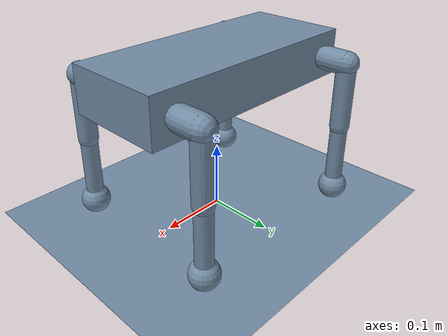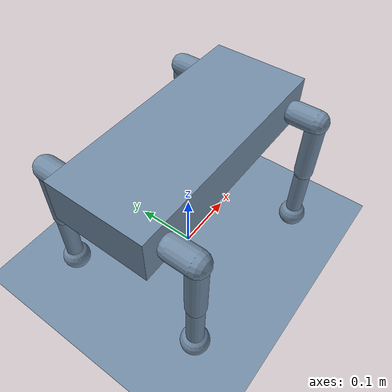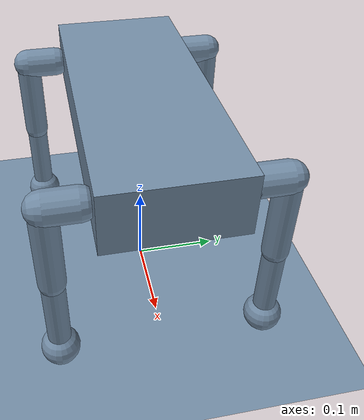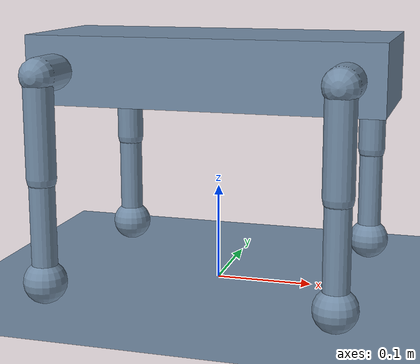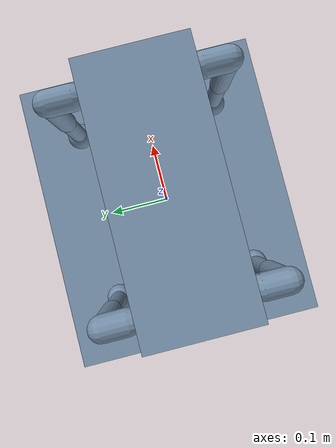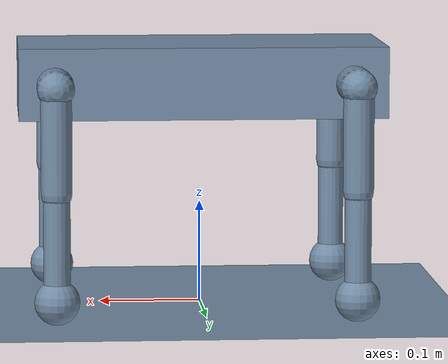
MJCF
<mujoco model="robot_dog_minimal">
  <compiler angle="radian" autolimits="true" inertiafromgeom="true"/>
  <option timestep="0.002" gravity="0 0 -9.81" integrator="implicitfast"
          solver="Newton" iterations="20" tolerance="1e-10" cone="elliptic"/>

  <default>
    <joint damping="0.8" armature="0.01"/>
    <geom condim="3" friction="0.9 0.02 0.001" solref="0.012 1"
          solimp="0.9 0.95 0.001" density="500" rgba="0.45 0.55 0.65 1"/>
    <position kp="55" kv="4" ctrllimited="true" forcelimited="true"
              forcerange="-35 35"/>
  </default>

  <asset>
    <material name="ground" rgba="0.24 0.27 0.30 1"/>
    <material name="body" rgba="0.18 0.40 0.68 1"/>
    <material name="right_leg" rgba="0.78 0.45 0.16 1"/>
    <material name="left_leg" rgba="0.20 0.62 0.42 1"/>
    <material name="foot" rgba="0.12 0.12 0.12 1"/>
  </asset>

  <worldbody>
    <light pos="0 0 2" dir="0 0 -1" diffuse="0.8 0.8 0.8"/>
    <geom name="ground" type="plane" size="2 2 0.1" material="ground"
          density="0" friction="0.9 0.02 0.001"/>

    <body name="base" pos="0 0 0.225">
      <freejoint name="base_free"/>
      <geom name="base_geom" type="box" size="0.18 0.075 0.035"
            mass="6.0" material="body"/>
      <site name="imu" pos="0 0 0" size="0.008" rgba="1 0 0 1"/>

      <body name="front_right_hip" pos="0.145 -0.085 0">
        <joint name="Revolute_1" type="hinge" axis="1 0 0" range="-0.6 0.6"/>
        <geom name="front_right_hip_geom" type="capsule"
              fromto="0 0 0 0 -0.035 0" size="0.018" mass="0.20"
              material="right_leg"/>
        <body name="front_right_thigh" pos="0 -0.035 0">
          <joint name="Revolute_25" type="hinge" axis="0 1 0"
                 range="-1.2 1.2"/>
          <geom name="front_right_thigh_geom" type="capsule"
                fromto="0 0 0 0 0 -0.10" size="0.015" mass="0.25"
                material="right_leg"/>
          <body name="front_right_calf" pos="0 0 -0.10">
            <joint name="Revolute_40" type="hinge" axis="0 1 0"
                   range="-2.0 0.3"/>
            <geom name="front_right_calf_geom" type="capsule"
                  fromto="0 0 0 0 0 -0.105" size="0.013" mass="0.20"
                  material="right_leg"/>
            <body name="front_right_foot" pos="0 0 -0.105">
              <geom name="front_right_foot_geom" type="sphere" size="0.022"
                    mass="0.08" material="foot"/>
              <site name="front_right_foot_site" size="0.024" rgba="0 0 0 0"/>
            </body>
          </body>
        </body>
      </body>

      <body name="rear_right_hip" pos="-0.145 -0.085 0">
        <joint name="Revolute_3" type="hinge" axis="1 0 0" range="-0.6 0.6"/>
        <geom name="rear_right_hip_geom" type="capsule"
              fromto="0 0 0 0 -0.035 0" size="0.018" mass="0.20"
              material="right_leg"/>
        <body name="rear_right_thigh" pos="0 -0.035 0">
          <joint name="Revolute_20" type="hinge" axis="0 1 0"
                 range="-1.2 1.2"/>
          <geom name="rear_right_thigh_geom" type="capsule"
                fromto="0 0 0 0 0 -0.10" size="0.015" mass="0.25"
                material="right_leg"/>
          <body name="rear_right_calf" pos="0 0 -0.10">
            <joint name="Revolute_23" type="hinge" axis="0 1 0"
                   range="-2.0 0.3"/>
            <geom name="rear_right_calf_geom" type="capsule"
                  fromto="0 0 0 0 0 -0.105" size="0.013" mass="0.20"
                  material="right_leg"/>
            <body name="rear_right_foot" pos="0 0 -0.105">
              <geom name="rear_right_foot_geom" type="sphere" size="0.022"
                    mass="0.08" material="foot"/>
              <site name="rear_right_foot_site" size="0.024" rgba="0 0 0 0"/>
            </body>
          </body>
        </body>
      </body>

      <body name="rear_left_hip" pos="-0.145 0.085 0">
        <joint name="Revolute_4" type="hinge" axis="1 0 0" range="-0.6 0.6"/>
        <geom name="rear_left_hip_geom" type="capsule"
              fromto="0 0 0 0 0.035 0" size="0.018" mass="0.20"
              material="left_leg"/>
        <body name="rear_left_thigh" pos="0 0.035 0">
          <joint name="Revolute_35" type="hinge" axis="0 1 0"
                 range="-1.2 1.2"/>
          <geom name="rear_left_thigh_geom" type="capsule"
                fromto="0 0 0 0 0 -0.10" size="0.015" mass="0.25"
                material="left_leg"/>
          <body name="rear_left_calf" pos="0 0 -0.10">
            <joint name="Revolute_45" type="hinge" axis="0 1 0"
                   range="-2.0 0.3"/>
            <geom name="rear_left_calf_geom" type="capsule"
                  fromto="0 0 0 0 0 -0.105" size="0.013" mass="0.20"
                  material="left_leg"/>
            <body name="rear_left_foot" pos="0 0 -0.105">
              <geom name="rear_left_foot_geom" type="sphere" size="0.022"
                    mass="0.08" material="foot"/>
              <site name="rear_left_foot_site" size="0.024" rgba="0 0 0 0"/>
            </body>
          </body>
        </body>
      </body>

      <body name="front_left_hip" pos="0.145 0.085 0">
        <joint name="Revolute_5" type="hinge" axis="1 0 0" range="-0.6 0.6"/>
        <geom name="front_left_hip_geom" type="capsule"
              fromto="0 0 0 0 0.035 0" size="0.018" mass="0.20"
              material="left_leg"/>
        <body name="front_left_thigh" pos="0 0.035 0">
          <joint name="Revolute_31" type="hinge" axis="0 1 0"
                 range="-1.2 1.2"/>
          <geom name="front_left_thigh_geom" type="capsule"
                fromto="0 0 0 0 0 -0.10" size="0.015" mass="0.25"
                material="left_leg"/>
          <body name="front_left_calf" pos="0 0 -0.10">
            <joint name="Revolute_48" type="hinge" axis="0 1 0"
                   range="-2.0 0.3"/>
            <geom name="front_left_calf_geom" type="capsule"
                  fromto="0 0 0 0 0 -0.105" size="0.013" mass="0.20"
                  material="left_leg"/>
            <body name="front_left_foot" pos="0 0 -0.105">
              <geom name="front_left_foot_geom" type="sphere" size="0.022"
                    mass="0.08" material="foot"/>
              <site name="front_left_foot_site" size="0.024" rgba="0 0 0 0"/>
            </body>
          </body>
        </body>
      </body>
    </body>
  </worldbody>

  <actuator>
    <position name="act_Revolute_1" joint="Revolute_1" ctrlrange="-0.6 0.6"/>
    <position name="act_Revolute_25" joint="Revolute_25" ctrlrange="-1.2 1.2"/>
    <position name="act_Revolute_40" joint="Revolute_40" ctrlrange="-2.0 0.3"/>
    <position name="act_Revolute_3" joint="Revolute_3" ctrlrange="-0.6 0.6"/>
    <position name="act_Revolute_20" joint="Revolute_20" ctrlrange="-1.2 1.2"/>
    <position name="act_Revolute_23" joint="Revolute_23" ctrlrange="-2.0 0.3"/>
    <position name="act_Revolute_4" joint="Revolute_4" ctrlrange="-0.6 0.6"/>
    <position name="act_Revolute_35" joint="Revolute_35" ctrlrange="-1.2 1.2"/>
    <position name="act_Revolute_45" joint="Revolute_45" ctrlrange="-2.0 0.3"/>
    <position name="act_Revolute_5" joint="Revolute_5" ctrlrange="-0.6 0.6"/>
    <position name="act_Revolute_31" joint="Revolute_31" ctrlrange="-1.2 1.2"/>
    <position name="act_Revolute_48" joint="Revolute_48" ctrlrange="-2.0 0.3"/>
  </actuator>

  <sensor>
    <gyro name="imu_gyro" site="imu"/>
    <accelerometer name="imu_specific_force" site="imu"/>
  </sensor>

  <keyframe>
    <!-- free joint: xyz + wxyz, followed by joints in model declaration order -->
    <key name="safe_stance"
         qpos="0 0 0.225 1 0 0 0
               0 0.45 -0.90  0 0.45 -0.90
               0 0.45 -0.90  0 0.45 -0.90"
         ctrl="0 0.45 -0.90  0 0.45 -0.90
               0 0.45 -0.90  0 0.45 -0.90"/>
  </keyframe>
</mujoco>
